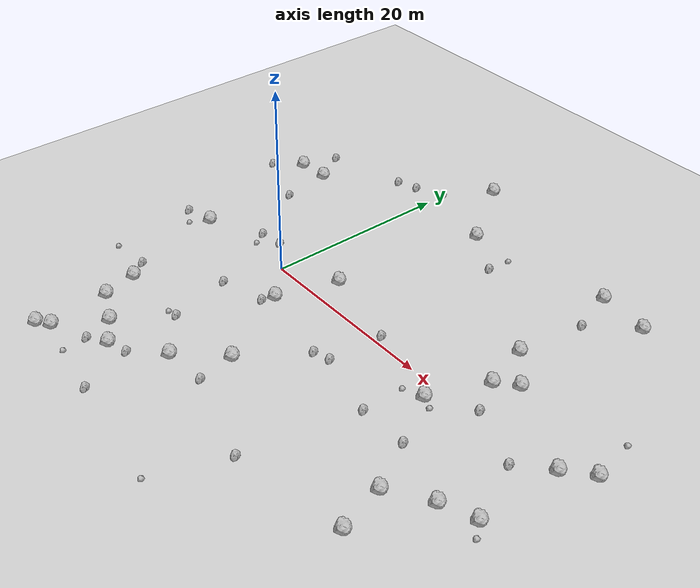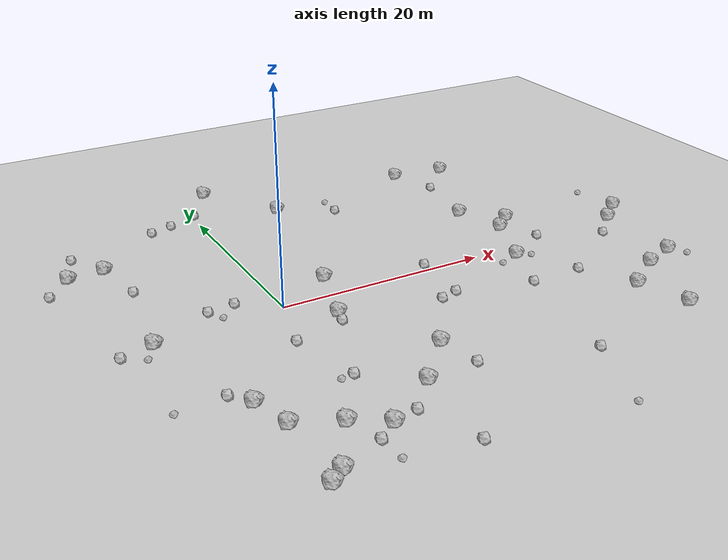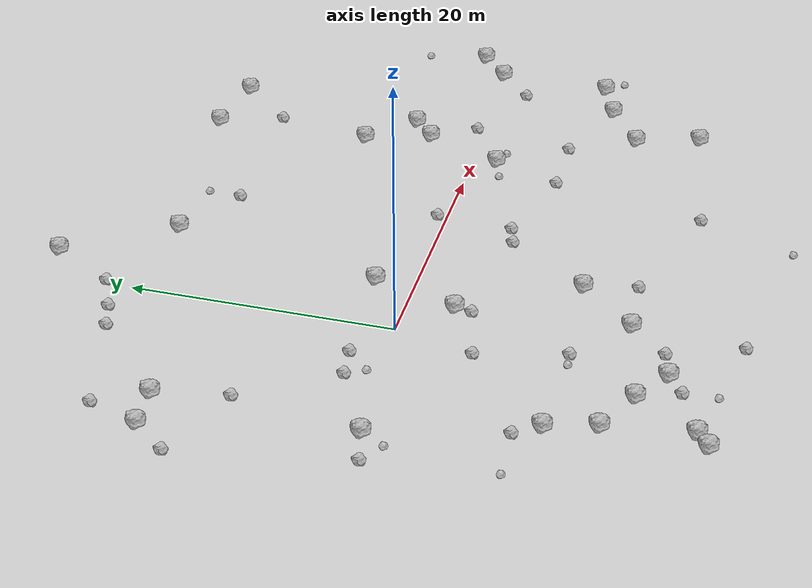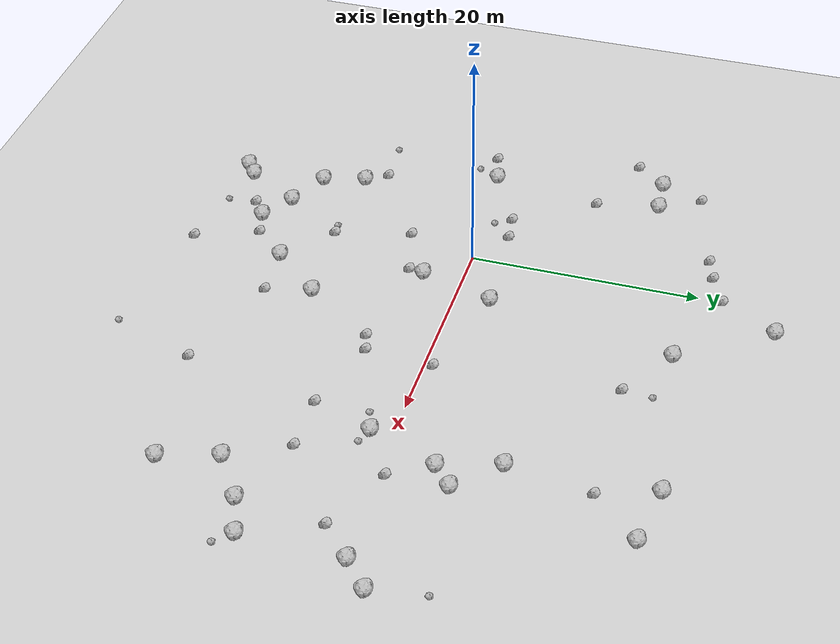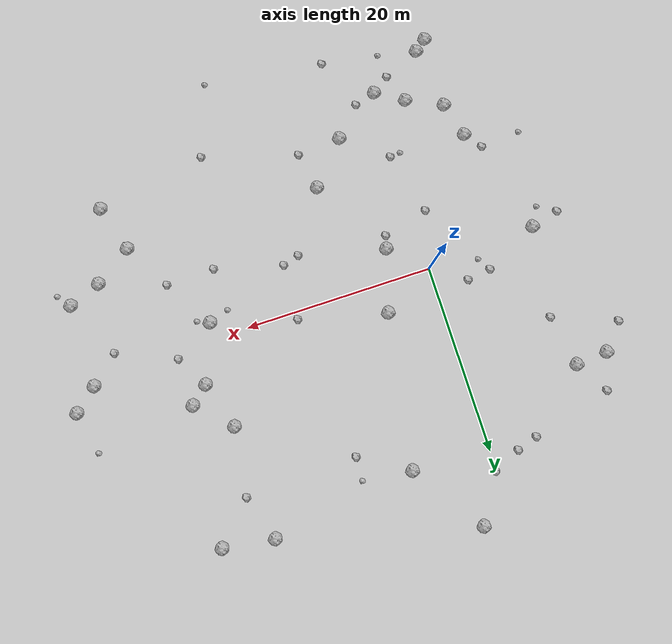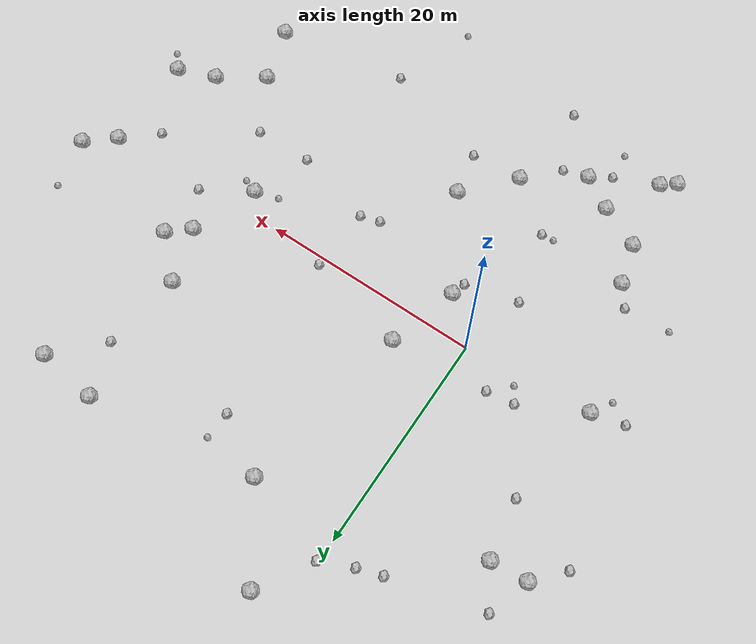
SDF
<sdf version="1.6">
 <world name="default">
  <include><uri>model://custom_ground</uri></include>
  <include><uri>model://sun</uri></include>
  <model name="rock1_0_0">
   <include><uri>model://rock1</uri><pose>33.48092743309829 -9.326103419252167 0.5 0 0 0</pose></include>
  </model>
  <model name="rock1_0_1">
   <include><uri>model://rock1</uri><pose>29.41898792670245 20.72050995712751 0.5 0 0 0</pose></include>
  </model>
  <model name="rock1_0_2">
   <include><uri>model://rock1</uri><pose>5.54505580973278 3.030387508109463 0.5 0 0 0</pose></include>
  </model>
  <model name="rock1_0_3">
   <include><uri>model://rock1</uri><pose>-0.44001886370844545 -19.751975685549017 0.5 0 0 0</pose></include>
  </model>
  <model name="rock1_0_4">
   <include><uri>model://rock1</uri><pose>24.43688452238456 9.280470032288306 0.5 0 0 0</pose></include>
  </model>
  <model name="rock1_0_5">
   <include><uri>model://rock1</uri><pose>8.508851895517772 -11.911615114221679 0.5 0 0 0</pose></include>
  </model>
  <model name="rock1_0_6">
   <include><uri>model://rock1</uri><pose>3.1789527513600966 26.984004540953734 0.5 0 0 0</pose></include>
  </model>
  <model name="rock1_0_7">
   <include><uri>model://rock1</uri><pose>4.6085433174544335 -16.208655932948037 0.5 0 0 0</pose></include>
  </model>
  <model name="rock1_0_8">
   <include><uri>model://rock1</uri><pose>8.34947680387559 19.332925990894303 0.5 0 0 0</pose></include>
  </model>
  <model name="rock1_0_9">
   <include><uri>model://rock1</uri><pose>39.55571474109297 2.8886161691373786 0.5 0 0 0</pose></include>
  </model>
  <model name="rock1_0_10">
   <include><uri>model://rock1</uri><pose>-7.084247435174213 -16.19274437085252 0.5 0 0 0</pose></include>
  </model>
  <model name="rock1_0_11">
   <include><uri>model://rock1</uri><pose>-11.773809338668856 -0.8835811716899613 0.5 0 0 0</pose></include>
  </model>
  <model name="rock1_0_12">
   <include><uri>model://rock1</uri><pose>3.6131503753311662 -3.449969344255525 0.5 0 0 0</pose></include>
  </model>
  <model name="rock1_0_13">
   <include><uri>model://rock1</uri><pose>37.03922638825003 0.7604099222660494 0.5 0 0 0</pose></include>
  </model>
  <model name="rock1_0_14">
   <include><uri>model://rock1</uri><pose>27.878199747291816 5.879217747921089 0.5 0 0 0</pose></include>
  </model>
  <model name="rock1_0_15">
   <include><uri>model://rock1</uri><pose>23.928897416034943 21.50041570805199 0.5 0 0 0</pose></include>
  </model>
  <model name="rock1_0_16">
   <include><uri>model://rock1</uri><pose>-6.139912296293257 -22.662500574279 0.5 0 0 0</pose></include>
  </model>
  <model name="rock1_0_17">
   <include><uri>model://rock1</uri><pose>25.973974266434226 4.216760661313415 0.5 0 0 0</pose></include>
  </model>
  <model name="rock1_0_18">
   <include><uri>model://rock1</uri><pose>29.506858663661895 -11.951769143263917 0.5 0 0 0</pose></include>
  </model>
  <model name="rock1_0_19">
   <include><uri>model://rock1</uri><pose>-3.336803864472344 -17.949962794252265 0.5 0 0 0</pose></include>
  </model>
  <model name="rock1_0_20">
   <include><uri>model://rock1</uri><pose>-14.768763444629599 14.004524159583411 0.5 0 0 0</pose></include>
  </model>
  <model name="rock1_0_21">
   <include><uri>model://rock1</uri><pose>36.90252615363966 -8.026750581440915 0.5 0 0 0</pose></include>
  </model>
  <model name="rock1_0_22">
   <include><uri>model://rock1</uri><pose>-8.10312503912131 -12.493867934087255 0.5 0 0 0</pose></include>
  </model>
  <model name="rock1_0_23">
   <include><uri>model://rock1</uri><pose>23.576728709797372 -1.7986465078500622 0.5 0 0 0</pose></include>
  </model>
  <model name="rock1_0_24">
   <include><uri>model://rock1</uri><pose>30.935893930030147 -16.87208144167651 0.5 0 0 0</pose></include>
  </model>
  <model name="rock1_0_25">
   <include><uri>model://rock1</uri><pose>-7.419584975284433 -23.632368536258745 0.5 0 0 0</pose></include>
  </model>
  <model name="rock1_0_26">
   <include><uri>model://rock1</uri><pose>-11.386555248476027 14.267519173964786 0.5 0 0 0</pose></include>
  </model>
  <model name="rock2_0_0">
   <include><uri>model://rock2</uri><pose>3.856183961605211 -24.52179467602359 0.3 0 0 0</pose></include>
  </model>
  <model name="rock2_0_1">
   <include><uri>model://rock2</uri><pose>-17.129980434639606 11.375389929515471 0.3 0 0 0</pose></include>
  </model>
  <model name="rock2_0_2">
   <include><uri>model://rock2</uri><pose>1.7780648143428976 -19.130323954198467 0.3 0 0 0</pose></include>
  </model>
  <model name="rock2_0_3">
   <include><uri>model://rock2</uri><pose>-4.985571886803449 20.074585134584503 0.3 0 0 0</pose></include>
  </model>
  <model name="rock2_0_4">
   <include><uri>model://rock2</uri><pose>0.06725853325990983 -12.635762148024593 0.3 0 0 0</pose></include>
  </model>
  <model name="rock2_0_5">
   <include><uri>model://rock2</uri><pose>14.391349566683104 -5.139451082268817 0.3 0 0 0</pose></include>
  </model>
  <model name="rock2_0_6">
   <include><uri>model://rock2</uri><pose>34.04537437319068 -1.853604462604185 0.3 0 0 0</pose></include>
  </model>
  <model name="rock2_0_7">
   <include><uri>model://rock2</uri><pose>21.53213151569495 -7.063517998420068 0.3 0 0 0</pose></include>
  </model>
  <model name="rock2_0_8">
   <include><uri>model://rock2</uri><pose>3.2055942487072357 -4.784607659981106 0.3 0 0 0</pose></include>
  </model>
  <model name="rock2_0_9">
   <include><uri>model://rock2</uri><pose>-2.3080240095491007 -21.002786097367572 0.3 0 0 0</pose></include>
  </model>
  <model name="rock2_0_10">
   <include><uri>model://rock2</uri><pose>13.428080007209509 16.22363177327962 0.3 0 0 0</pose></include>
  </model>
  <model name="rock2_0_11">
   <include><uri>model://rock2</uri><pose>-13.552589573815572 17.84801520114533 0.3 0 0 0</pose></include>
  </model>
  <model name="rock2_0_12">
   <include><uri>model://rock2</uri><pose>27.877873258752864 0.8199212779522895 0.3 0 0 0</pose></include>
  </model>
  <model name="rock2_0_13">
   <include><uri>model://rock2</uri><pose>-14.811091801125308 -1.6173912262203807 0.3 0 0 0</pose></include>
  </model>
  <model name="rock2_0_14">
   <include><uri>model://rock2</uri><pose>19.1782861287991 -18.863439535302355 0.3 0 0 0</pose></include>
  </model>
  <model name="rock2_0_15">
   <include><uri>model://rock2</uri><pose>9.271171397781114 -15.875349443184458 0.3 0 0 0</pose></include>
  </model>
  <model name="rock2_0_16">
   <include><uri>model://rock2</uri><pose>12.631861861594096 -5.649633124707385 0.3 0 0 0</pose></include>
  </model>
  <model name="rock2_0_17">
   <include><uri>model://rock2</uri><pose>25.459748911574714 16.629733225865273 0.3 0 0 0</pose></include>
  </model>
  <model name="rock2_0_18">
   <include><uri>model://rock2</uri><pose>14.758377830095796 0.7602927908935655 0.3 0 0 0</pose></include>
  </model>
  <model name="rock2_0_19">
   <include><uri>model://rock2</uri><pose>26.70533870843707 -6.98418508004578 0.3 0 0 0</pose></include>
  </model>
  <model name="rock2_0_20">
   <include><uri>model://rock2</uri><pose>-10.463003240104216 8.777390612806968 0.3 0 0 0</pose></include>
  </model>
  <model name="rock2_0_21">
   <include><uri>model://rock2</uri><pose>-3.552243768312021 2.369402986216535 0.3 0 0 0</pose></include>
  </model>
  <model name="rock2_0_22">
   <include><uri>model://rock2</uri><pose>0.18056775331650954 22.09771925945536 0.3 0 0 0</pose></include>
  </model>
  <model name="rock2_0_23">
   <include><uri>model://rock2</uri><pose>-1.6159806842486617 -6.0261118167477825 0.3 0 0 0</pose></include>
  </model>
  <model name="rock2_0_24">
   <include><uri>model://rock2</uri><pose>-6.095911497279028 2.0232586297049977 0.3 0 0 0</pose></include>
  </model>
  <model name="rock2_0_25">
   <include><uri>model://rock2</uri><pose>-2.76170540629327 20.787121341111607 0.3 0 0 0</pose></include>
  </model>
  <model name="rock2_0_26">
   <include><uri>model://rock2</uri><pose>-9.507682121175288 -10.664804248338545 0.3 0 0 0</pose></include>
  </model>
  <model name="rock3_0_0">
   <include><uri>model://rock3</uri><pose>13.557309236497481 18.733771688179274 0.2 0 0 0</pose></include>
  </model>
  <model name="rock3_0_1">
   <include><uri>model://rock3</uri><pose>38.624749426703794 7.522688702360888 0.2 0 0 0</pose></include>
  </model>
  <model name="rock3_0_2">
   <include><uri>model://rock3</uri><pose>21.42893682527533 -2.5224101579158607 0.2 0 0 0</pose></include>
  </model>
  <model name="rock3_0_3">
   <include><uri>model://rock3</uri><pose>16.436359706322683 -26.2861256276555 0.2 0 0 0</pose></include>
  </model>
  <model name="rock3_0_4">
   <include><uri>model://rock3</uri><pose>-12.944114929940682 -2.7948187674281364 0.2 0 0 0</pose></include>
  </model>
  <model name="rock3_0_5">
   <include><uri>model://rock3</uri><pose>-13.764761837583592 -10.98692275377941 0.2 0 0 0</pose></include>
  </model>
  <model name="rock3_0_6">
   <include><uri>model://rock3</uri><pose>-5.268484073442327 0.5925161183612175 0.2 0 0 0</pose></include>
  </model>
  <model name="rock3_0_7">
   <include><uri>model://rock3</uri><pose>24.84276680217546 -2.359306376881232 0.2 0 0 0</pose></include>
  </model>
  <model name="rock3_0_8">
   <include><uri>model://rock3</uri><pose>37.99546936893786 -9.425436087733825 0.2 0 0 0</pose></include>
  </model>
  <model name="rock3_0_9">
   <include><uri>model://rock3</uri><pose>-2.1337440070809386 -23.565634814952503 0.2 0 0 0</pose></include>
  </model>
  <model name="rock3_0_10">
   <include><uri>model://rock3</uri><pose>-1.0748507359936426 -12.778419800932856 0.2 0 0 0</pose></include>
  </model>
 </world>
</sdf>
